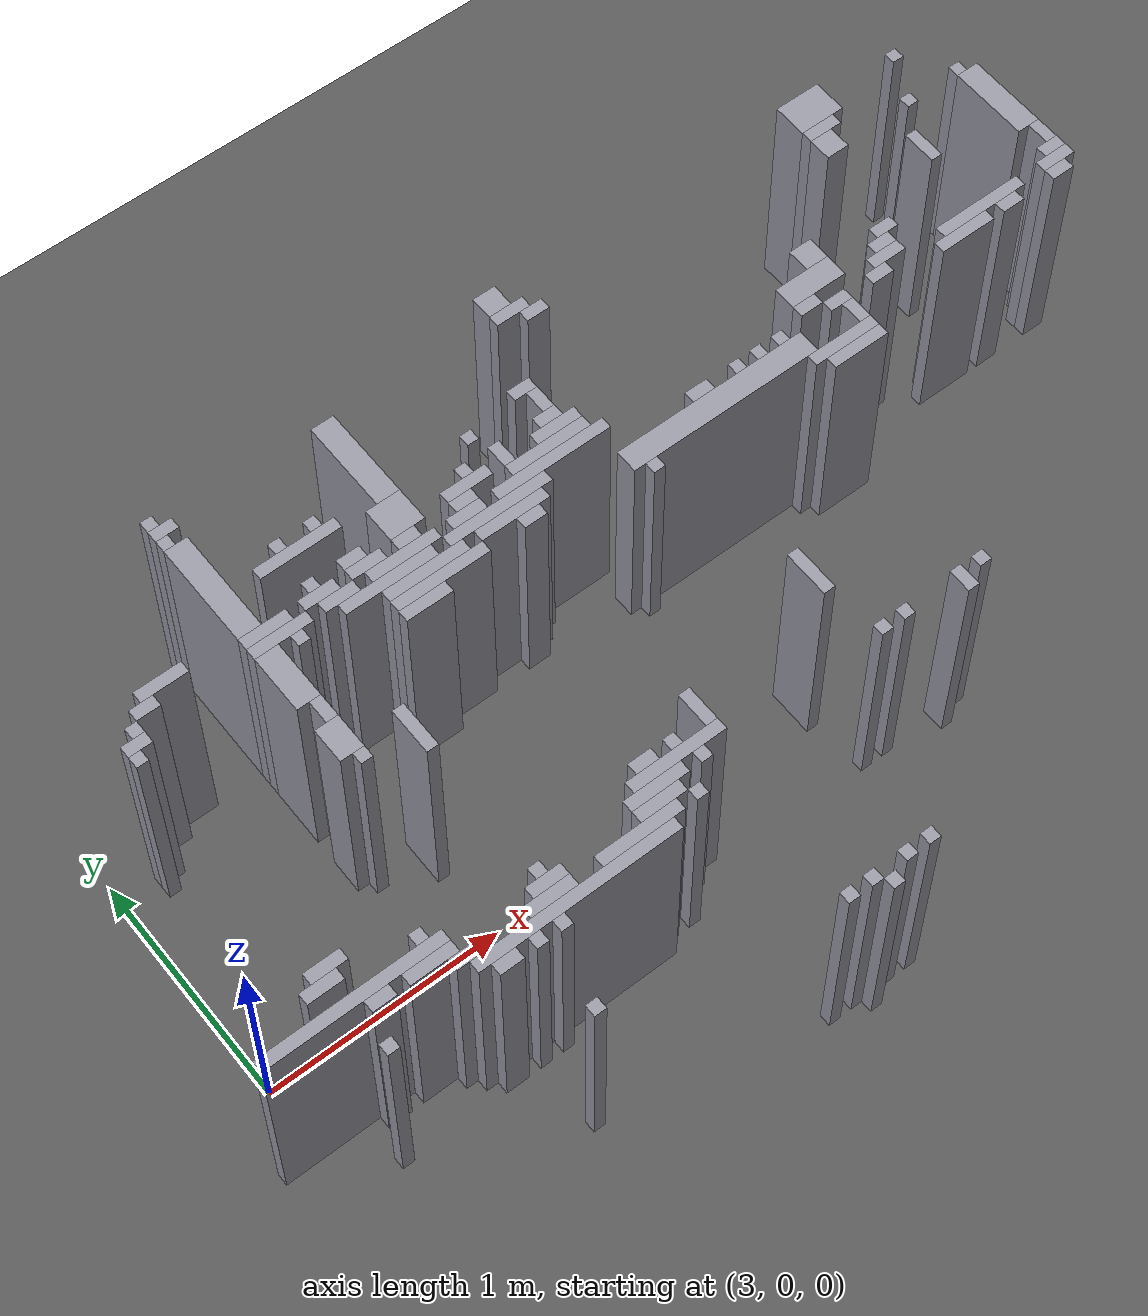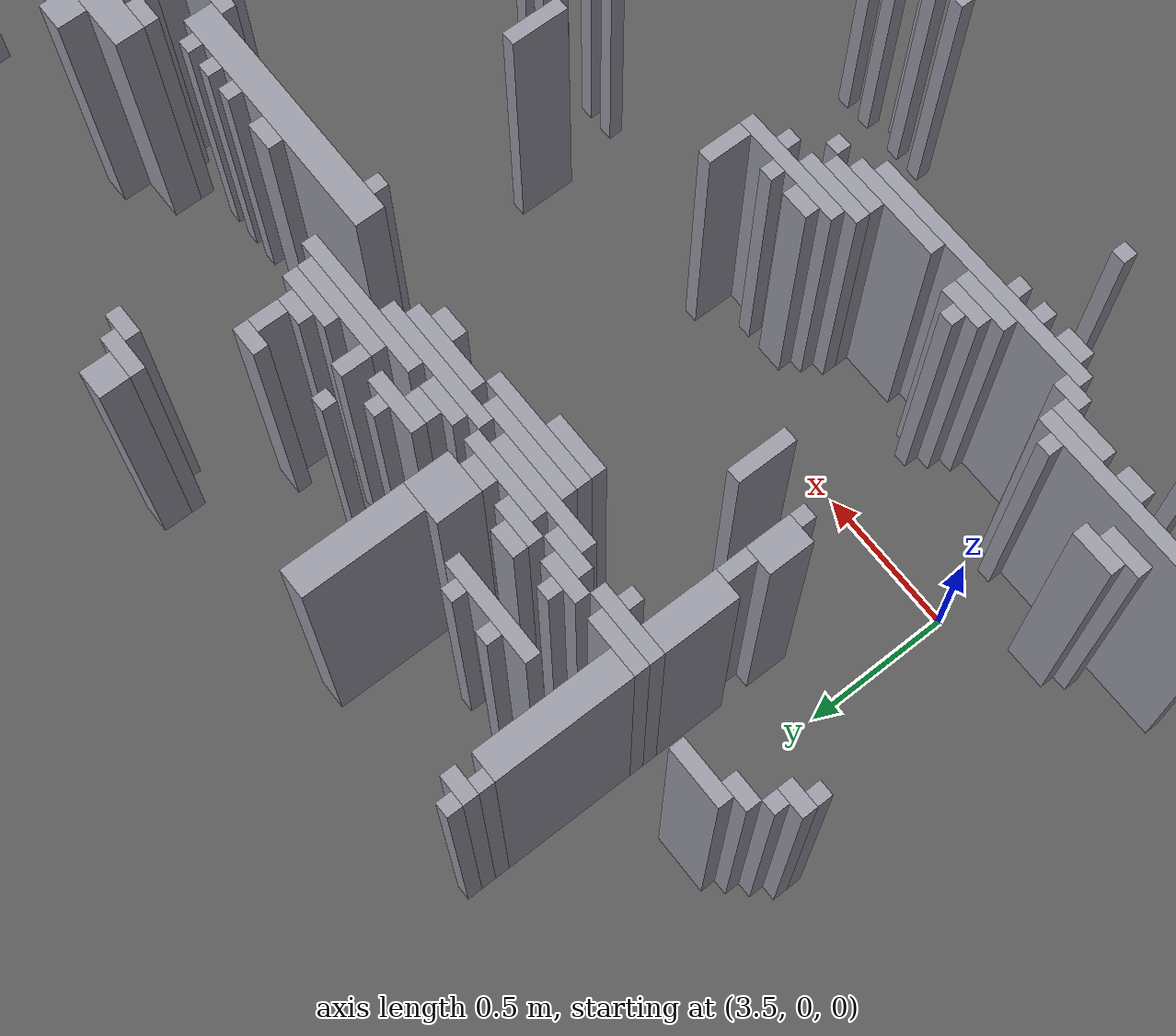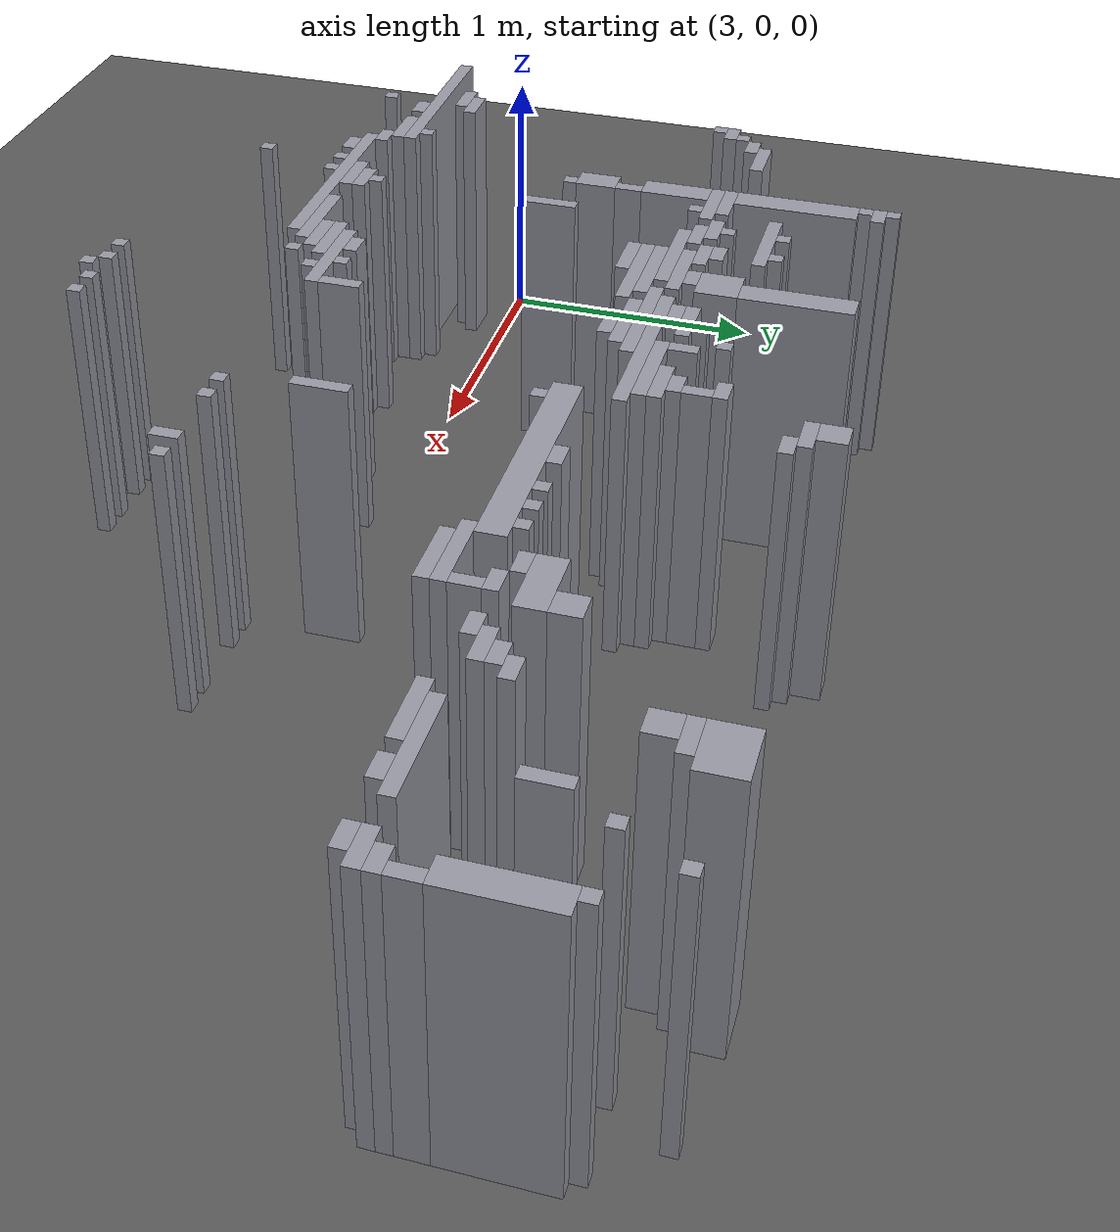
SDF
<sdf version="1.8">
 <world name="dimi">
  <model name="ground">
   <static>true</static>
   <link name="ground_link">
    <collision name="c"><geometry><plane><normal>0 0 1</normal><size>60 60</size></plane></geometry></collision>
    <visual name="v">
     <geometry><plane><normal>0 0 1</normal><size>60 60</size></plane></geometry>
     <material><ambient>0.3 0.3 0.3 1</ambient><diffuse>0.35 0.35 0.35 1</diffuse></material>
    </visual>
   </link>
  </model>
  <model name="walls">
   <static>true</static>
   <link name="wall_625">
    <pose>5.2530 1.6420 0.5000 0 0 0</pose>
    <collision name="c"><geometry><box><size>0.1000 0.1000 1.0000</size></box></geometry></collision>
    <visual name="v">
     <geometry><box><size>0.1000 0.1000 1.0000</size></box></geometry>
     <material><ambient>0.5 0.5 0.55 1</ambient><diffuse>0.6 0.6 0.65 1</diffuse></material>
    </visual>
   </link>
   <link name="wall_626">
    <pose>6.7530 1.6170 0.5000 0 0 0</pose>
    <collision name="c"><geometry><box><size>0.2000 0.1500 1.0000</size></box></geometry></collision>
    <visual name="v">
     <geometry><box><size>0.2000 0.1500 1.0000</size></box></geometry>
     <material><ambient>0.5 0.5 0.55 1</ambient><diffuse>0.6 0.6 0.65 1</diffuse></material>
    </visual>
   </link>
   <link name="wall_628">
    <pose>3.7280 1.6170 0.5000 0 0 0</pose>
    <collision name="c"><geometry><box><size>0.0500 0.0500 1.0000</size></box></geometry></collision>
    <visual name="v">
     <geometry><box><size>0.0500 0.0500 1.0000</size></box></geometry>
     <material><ambient>0.5 0.5 0.55 1</ambient><diffuse>0.6 0.6 0.65 1</diffuse></material>
    </visual>
   </link>
   <link name="wall_629">
    <pose>7.1780 1.6170 0.5000 0 0 0</pose>
    <collision name="c"><geometry><box><size>0.0500 0.0500 1.0000</size></box></geometry></collision>
    <visual name="v">
     <geometry><box><size>0.0500 0.0500 1.0000</size></box></geometry>
     <material><ambient>0.5 0.5 0.55 1</ambient><diffuse>0.6 0.6 0.65 1</diffuse></material>
    </visual>
   </link>
   <link name="wall_630">
    <pose>3.7530 1.5670 0.5000 0 0 0</pose>
    <collision name="c"><geometry><box><size>0.1000 0.0500 1.0000</size></box></geometry></collision>
    <visual name="v">
     <geometry><box><size>0.1000 0.0500 1.0000</size></box></geometry>
     <material><ambient>0.5 0.5 0.55 1</ambient><diffuse>0.6 0.6 0.65 1</diffuse></material>
    </visual>
   </link>
   <link name="wall_631">
    <pose>4.4530 1.3920 0.5000 0 0 0</pose>
    <collision name="c"><geometry><box><size>0.1000 0.4000 1.0000</size></box></geometry></collision>
    <visual name="v">
     <geometry><box><size>0.1000 0.4000 1.0000</size></box></geometry>
     <material><ambient>0.5 0.5 0.55 1</ambient><diffuse>0.6 0.6 0.65 1</diffuse></material>
    </visual>
   </link>
   <link name="wall_632">
    <pose>5.2780 1.5670 0.5000 0 0 0</pose>
    <collision name="c"><geometry><box><size>0.1500 0.0500 1.0000</size></box></geometry></collision>
    <visual name="v">
     <geometry><box><size>0.1500 0.0500 1.0000</size></box></geometry>
     <material><ambient>0.5 0.5 0.55 1</ambient><diffuse>0.6 0.6 0.65 1</diffuse></material>
    </visual>
   </link>
   <link name="wall_633">
    <pose>3.7280 1.5170 0.5000 0 0 0</pose>
    <collision name="c"><geometry><box><size>0.0500 0.0500 1.0000</size></box></geometry></collision>
    <visual name="v">
     <geometry><box><size>0.0500 0.0500 1.0000</size></box></geometry>
     <material><ambient>0.5 0.5 0.55 1</ambient><diffuse>0.6 0.6 0.65 1</diffuse></material>
    </visual>
   </link>
   <link name="wall_634">
    <pose>5.3530 1.5170 0.5000 0 0 0</pose>
    <collision name="c"><geometry><box><size>0.1000 0.0500 1.0000</size></box></geometry></collision>
    <visual name="v">
     <geometry><box><size>0.1000 0.0500 1.0000</size></box></geometry>
     <material><ambient>0.5 0.5 0.55 1</ambient><diffuse>0.6 0.6 0.65 1</diffuse></material>
    </visual>
   </link>
   <link name="wall_635">
    <pose>6.7280 1.5170 0.5000 0 0 0</pose>
    <collision name="c"><geometry><box><size>0.1500 0.0500 1.0000</size></box></geometry></collision>
    <visual name="v">
     <geometry><box><size>0.1500 0.0500 1.0000</size></box></geometry>
     <material><ambient>0.5 0.5 0.55 1</ambient><diffuse>0.6 0.6 0.65 1</diffuse></material>
    </visual>
   </link>
   <link name="wall_636">
    <pose>3.7530 1.2670 0.5000 0 0 0</pose>
    <collision name="c"><geometry><box><size>0.1000 0.4500 1.0000</size></box></geometry></collision>
    <visual name="v">
     <geometry><box><size>0.1000 0.4500 1.0000</size></box></geometry>
     <material><ambient>0.5 0.5 0.55 1</ambient><diffuse>0.6 0.6 0.65 1</diffuse></material>
    </visual>
   </link>
   <link name="wall_637">
    <pose>6.7030 1.4420 0.5000 0 0 0</pose>
    <collision name="c"><geometry><box><size>0.1000 0.1000 1.0000</size></box></geometry></collision>
    <visual name="v">
     <geometry><box><size>0.1000 0.1000 1.0000</size></box></geometry>
     <material><ambient>0.5 0.5 0.55 1</ambient><diffuse>0.6 0.6 0.65 1</diffuse></material>
    </visual>
   </link>
   <link name="wall_639">
    <pose>7.0780 1.4170 0.5000 0 0 0</pose>
    <collision name="c"><geometry><box><size>0.0500 0.0500 1.0000</size></box></geometry></collision>
    <visual name="v">
     <geometry><box><size>0.0500 0.0500 1.0000</size></box></geometry>
     <material><ambient>0.5 0.5 0.55 1</ambient><diffuse>0.6 0.6 0.65 1</diffuse></material>
    </visual>
   </link>
   <link name="wall_640">
    <pose>7.3280 1.4170 0.5000 0 0 0</pose>
    <collision name="c"><geometry><box><size>0.0500 0.0500 1.0000</size></box></geometry></collision>
    <visual name="v">
     <geometry><box><size>0.0500 0.0500 1.0000</size></box></geometry>
     <material><ambient>0.5 0.5 0.55 1</ambient><diffuse>0.6 0.6 0.65 1</diffuse></material>
    </visual>
   </link>
   <link name="wall_642">
    <pose>7.3530 1.2170 0.5000 0 0 0</pose>
    <collision name="c"><geometry><box><size>0.1000 0.3500 1.0000</size></box></geometry></collision>
    <visual name="v">
     <geometry><box><size>0.1000 0.3500 1.0000</size></box></geometry>
     <material><ambient>0.5 0.5 0.55 1</ambient><diffuse>0.6 0.6 0.65 1</diffuse></material>
    </visual>
   </link>
   <link name="wall_648">
    <pose>4.0280 1.2670 0.5000 0 0 0</pose>
    <collision name="c"><geometry><box><size>0.0500 0.0500 1.0000</size></box></geometry></collision>
    <visual name="v">
     <geometry><box><size>0.0500 0.0500 1.0000</size></box></geometry>
     <material><ambient>0.5 0.5 0.55 1</ambient><diffuse>0.6 0.6 0.65 1</diffuse></material>
    </visual>
   </link>
   <link name="wall_649">
    <pose>4.1780 1.2670 0.5000 0 0 0</pose>
    <collision name="c"><geometry><box><size>0.0500 0.0500 1.0000</size></box></geometry></collision>
    <visual name="v">
     <geometry><box><size>0.0500 0.0500 1.0000</size></box></geometry>
     <material><ambient>0.5 0.5 0.55 1</ambient><diffuse>0.6 0.6 0.65 1</diffuse></material>
    </visual>
   </link>
   <link name="wall_650">
    <pose>5.1030 1.2670 0.5000 0 0 0</pose>
    <collision name="c"><geometry><box><size>0.1000 0.0500 1.0000</size></box></geometry></collision>
    <visual name="v">
     <geometry><box><size>0.1000 0.0500 1.0000</size></box></geometry>
     <material><ambient>0.5 0.5 0.55 1</ambient><diffuse>0.6 0.6 0.65 1</diffuse></material>
    </visual>
   </link>
   <link name="wall_651">
    <pose>6.9780 1.2170 0.5000 0 0 0</pose>
    <collision name="c"><geometry><box><size>0.0500 0.1500 1.0000</size></box></geometry></collision>
    <visual name="v">
     <geometry><box><size>0.0500 0.1500 1.0000</size></box></geometry>
     <material><ambient>0.5 0.5 0.55 1</ambient><diffuse>0.6 0.6 0.65 1</diffuse></material>
    </visual>
   </link>
   <link name="wall_655">
    <pose>4.0780 1.2170 0.5000 0 0 0</pose>
    <collision name="c"><geometry><box><size>0.3500 0.0500 1.0000</size></box></geometry></collision>
    <visual name="v">
     <geometry><box><size>0.3500 0.0500 1.0000</size></box></geometry>
     <material><ambient>0.5 0.5 0.55 1</ambient><diffuse>0.6 0.6 0.65 1</diffuse></material>
    </visual>
   </link>
   <link name="wall_656">
    <pose>4.8280 1.2170 0.5000 0 0 0</pose>
    <collision name="c"><geometry><box><size>0.0500 0.0500 1.0000</size></box></geometry></collision>
    <visual name="v">
     <geometry><box><size>0.0500 0.0500 1.0000</size></box></geometry>
     <material><ambient>0.5 0.5 0.55 1</ambient><diffuse>0.6 0.6 0.65 1</diffuse></material>
    </visual>
   </link>
   <link name="wall_657">
    <pose>5.1280 1.1920 0.5000 0 0 0</pose>
    <collision name="c"><geometry><box><size>0.0500 0.1000 1.0000</size></box></geometry></collision>
    <visual name="v">
     <geometry><box><size>0.0500 0.1000 1.0000</size></box></geometry>
     <material><ambient>0.5 0.5 0.55 1</ambient><diffuse>0.6 0.6 0.65 1</diffuse></material>
    </visual>
   </link>
   <link name="wall_659">
    <pose>4.4280 1.1170 0.5000 0 0 0</pose>
    <collision name="c"><geometry><box><size>0.1500 0.1500 1.0000</size></box></geometry></collision>
    <visual name="v">
     <geometry><box><size>0.1500 0.1500 1.0000</size></box></geometry>
     <material><ambient>0.5 0.5 0.55 1</ambient><diffuse>0.6 0.6 0.65 1</diffuse></material>
    </visual>
   </link>
   <link name="wall_660">
    <pose>4.7280 1.1170 0.5000 0 0 0</pose>
    <collision name="c"><geometry><box><size>0.0500 0.0500 1.0000</size></box></geometry></collision>
    <visual name="v">
     <geometry><box><size>0.0500 0.0500 1.0000</size></box></geometry>
     <material><ambient>0.5 0.5 0.55 1</ambient><diffuse>0.6 0.6 0.65 1</diffuse></material>
    </visual>
   </link>
   <link name="wall_661">
    <pose>4.8780 1.0920 0.5000 0 0 0</pose>
    <collision name="c"><geometry><box><size>0.0500 0.1000 1.0000</size></box></geometry></collision>
    <visual name="v">
     <geometry><box><size>0.0500 0.1000 1.0000</size></box></geometry>
     <material><ambient>0.5 0.5 0.55 1</ambient><diffuse>0.6 0.6 0.65 1</diffuse></material>
    </visual>
   </link>
   <link name="wall_662">
    <pose>5.1030 1.1170 0.5000 0 0 0</pose>
    <collision name="c"><geometry><box><size>0.1000 0.0500 1.0000</size></box></geometry></collision>
    <visual name="v">
     <geometry><box><size>0.1000 0.0500 1.0000</size></box></geometry>
     <material><ambient>0.5 0.5 0.55 1</ambient><diffuse>0.6 0.6 0.65 1</diffuse></material>
    </visual>
   </link>
   <link name="wall_663">
    <pose>6.3030 1.0920 0.5000 0 0 0</pose>
    <collision name="c"><geometry><box><size>0.1000 0.1000 1.0000</size></box></geometry></collision>
    <visual name="v">
     <geometry><box><size>0.1000 0.1000 1.0000</size></box></geometry>
     <material><ambient>0.5 0.5 0.55 1</ambient><diffuse>0.6 0.6 0.65 1</diffuse></material>
    </visual>
   </link>
   <link name="wall_664">
    <pose>3.4030 1.0670 0.5000 0 0 0</pose>
    <collision name="c"><geometry><box><size>0.2000 0.0500 1.0000</size></box></geometry></collision>
    <visual name="v">
     <geometry><box><size>0.2000 0.0500 1.0000</size></box></geometry>
     <material><ambient>0.5 0.5 0.55 1</ambient><diffuse>0.6 0.6 0.65 1</diffuse></material>
    </visual>
   </link>
   <link name="wall_665">
    <pose>4.0280 1.0670 0.5000 0 0 0</pose>
    <collision name="c"><geometry><box><size>0.0500 0.0500 1.0000</size></box></geometry></collision>
    <visual name="v">
     <geometry><box><size>0.0500 0.0500 1.0000</size></box></geometry>
     <material><ambient>0.5 0.5 0.55 1</ambient><diffuse>0.6 0.6 0.65 1</diffuse></material>
    </visual>
   </link>
   <link name="wall_666">
    <pose>4.2030 1.0670 0.5000 0 0 0</pose>
    <collision name="c"><geometry><box><size>0.1000 0.0500 1.0000</size></box></geometry></collision>
    <visual name="v">
     <geometry><box><size>0.1000 0.0500 1.0000</size></box></geometry>
     <material><ambient>0.5 0.5 0.55 1</ambient><diffuse>0.6 0.6 0.65 1</diffuse></material>
    </visual>
   </link>
   <link name="wall_667">
    <pose>4.7030 1.0670 0.5000 0 0 0</pose>
    <collision name="c"><geometry><box><size>0.2000 0.0500 1.0000</size></box></geometry></collision>
    <visual name="v">
     <geometry><box><size>0.2000 0.0500 1.0000</size></box></geometry>
     <material><ambient>0.5 0.5 0.55 1</ambient><diffuse>0.6 0.6 0.65 1</diffuse></material>
    </visual>
   </link>
   <link name="wall_668">
    <pose>5.1030 1.0670 0.5000 0 0 0</pose>
    <collision name="c"><geometry><box><size>0.2000 0.0500 1.0000</size></box></geometry></collision>
    <visual name="v">
     <geometry><box><size>0.2000 0.0500 1.0000</size></box></geometry>
     <material><ambient>0.5 0.5 0.55 1</ambient><diffuse>0.6 0.6 0.65 1</diffuse></material>
    </visual>
   </link>
   <link name="wall_669">
    <pose>3.3030 1.0170 0.5000 0 0 0</pose>
    <collision name="c"><geometry><box><size>0.1000 0.0500 1.0000</size></box></geometry></collision>
    <visual name="v">
     <geometry><box><size>0.1000 0.0500 1.0000</size></box></geometry>
     <material><ambient>0.5 0.5 0.55 1</ambient><diffuse>0.6 0.6 0.65 1</diffuse></material>
    </visual>
   </link>
   <link name="wall_670">
    <pose>3.8030 1.0170 0.5000 0 0 0</pose>
    <collision name="c"><geometry><box><size>0.2000 0.0500 1.0000</size></box></geometry></collision>
    <visual name="v">
     <geometry><box><size>0.2000 0.0500 1.0000</size></box></geometry>
     <material><ambient>0.5 0.5 0.55 1</ambient><diffuse>0.6 0.6 0.65 1</diffuse></material>
    </visual>
   </link>
   <link name="wall_671">
    <pose>4.0280 1.0170 0.5000 0 0 0</pose>
    <collision name="c"><geometry><box><size>0.1500 0.0500 1.0000</size></box></geometry></collision>
    <visual name="v">
     <geometry><box><size>0.1500 0.0500 1.0000</size></box></geometry>
     <material><ambient>0.5 0.5 0.55 1</ambient><diffuse>0.6 0.6 0.65 1</diffuse></material>
    </visual>
   </link>
   <link name="wall_672">
    <pose>4.2280 1.0170 0.5000 0 0 0</pose>
    <collision name="c"><geometry><box><size>0.1500 0.0500 1.0000</size></box></geometry></collision>
    <visual name="v">
     <geometry><box><size>0.1500 0.0500 1.0000</size></box></geometry>
     <material><ambient>0.5 0.5 0.55 1</ambient><diffuse>0.6 0.6 0.65 1</diffuse></material>
    </visual>
   </link>
   <link name="wall_673">
    <pose>4.4030 1.0170 0.5000 0 0 0</pose>
    <collision name="c"><geometry><box><size>0.1000 0.0500 1.0000</size></box></geometry></collision>
    <visual name="v">
     <geometry><box><size>0.1000 0.0500 1.0000</size></box></geometry>
     <material><ambient>0.5 0.5 0.55 1</ambient><diffuse>0.6 0.6 0.65 1</diffuse></material>
    </visual>
   </link>
   <link name="wall_674">
    <pose>4.6530 1.0170 0.5000 0 0 0</pose>
    <collision name="c"><geometry><box><size>0.1000 0.0500 1.0000</size></box></geometry></collision>
    <visual name="v">
     <geometry><box><size>0.1000 0.0500 1.0000</size></box></geometry>
     <material><ambient>0.5 0.5 0.55 1</ambient><diffuse>0.6 0.6 0.65 1</diffuse></material>
    </visual>
   </link>
   <link name="wall_675">
    <pose>5.0280 1.0170 0.5000 0 0 0</pose>
    <collision name="c"><geometry><box><size>0.3500 0.0500 1.0000</size></box></geometry></collision>
    <visual name="v">
     <geometry><box><size>0.3500 0.0500 1.0000</size></box></geometry>
     <material><ambient>0.5 0.5 0.55 1</ambient><diffuse>0.6 0.6 0.65 1</diffuse></material>
    </visual>
   </link>
   <link name="wall_676">
    <pose>6.2280 0.9920 0.5000 0 0 0</pose>
    <collision name="c"><geometry><box><size>0.2500 0.1000 1.0000</size></box></geometry></collision>
    <visual name="v">
     <geometry><box><size>0.2500 0.1000 1.0000</size></box></geometry>
     <material><ambient>0.5 0.5 0.55 1</ambient><diffuse>0.6 0.6 0.65 1</diffuse></material>
    </visual>
   </link>
   <link name="wall_677">
    <pose>6.6030 1.0170 0.5000 0 0 0</pose>
    <collision name="c"><geometry><box><size>0.1000 0.0500 1.0000</size></box></geometry></collision>
    <visual name="v">
     <geometry><box><size>0.1000 0.0500 1.0000</size></box></geometry>
     <material><ambient>0.5 0.5 0.55 1</ambient><diffuse>0.6 0.6 0.65 1</diffuse></material>
    </visual>
   </link>
   <link name="wall_678">
    <pose>7.3780 0.9920 0.5000 0 0 0</pose>
    <collision name="c"><geometry><box><size>0.0500 0.1000 1.0000</size></box></geometry></collision>
    <visual name="v">
     <geometry><box><size>0.0500 0.1000 1.0000</size></box></geometry>
     <material><ambient>0.5 0.5 0.55 1</ambient><diffuse>0.6 0.6 0.65 1</diffuse></material>
    </visual>
   </link>
   <link name="wall_679">
    <pose>3.2280 0.9670 0.5000 0 0 0</pose>
    <collision name="c"><geometry><box><size>0.0500 0.0500 1.0000</size></box></geometry></collision>
    <visual name="v">
     <geometry><box><size>0.0500 0.0500 1.0000</size></box></geometry>
     <material><ambient>0.5 0.5 0.55 1</ambient><diffuse>0.6 0.6 0.65 1</diffuse></material>
    </visual>
   </link>
   <link name="wall_680">
    <pose>3.8280 0.9670 0.5000 0 0 0</pose>
    <collision name="c"><geometry><box><size>0.2500 0.0500 1.0000</size></box></geometry></collision>
    <visual name="v">
     <geometry><box><size>0.2500 0.0500 1.0000</size></box></geometry>
     <material><ambient>0.5 0.5 0.55 1</ambient><diffuse>0.6 0.6 0.65 1</diffuse></material>
    </visual>
   </link>
   <link name="wall_681">
    <pose>4.0780 0.9670 0.5000 0 0 0</pose>
    <collision name="c"><geometry><box><size>0.1500 0.0500 1.0000</size></box></geometry></collision>
    <visual name="v">
     <geometry><box><size>0.1500 0.0500 1.0000</size></box></geometry>
     <material><ambient>0.5 0.5 0.55 1</ambient><diffuse>0.6 0.6 0.65 1</diffuse></material>
    </visual>
   </link>
   <link name="wall_682">
    <pose>4.3530 0.9670 0.5000 0 0 0</pose>
    <collision name="c"><geometry><box><size>0.3000 0.0500 1.0000</size></box></geometry></collision>
    <visual name="v">
     <geometry><box><size>0.3000 0.0500 1.0000</size></box></geometry>
     <material><ambient>0.5 0.5 0.55 1</ambient><diffuse>0.6 0.6 0.65 1</diffuse></material>
    </visual>
   </link>
   <link name="wall_683">
    <pose>4.6280 0.9670 0.5000 0 0 0</pose>
    <collision name="c"><geometry><box><size>0.1500 0.0500 1.0000</size></box></geometry></collision>
    <visual name="v">
     <geometry><box><size>0.1500 0.0500 1.0000</size></box></geometry>
     <material><ambient>0.5 0.5 0.55 1</ambient><diffuse>0.6 0.6 0.65 1</diffuse></material>
    </visual>
   </link>
   <link name="wall_684">
    <pose>5.0030 0.9670 0.5000 0 0 0</pose>
    <collision name="c"><geometry><box><size>0.5000 0.0500 1.0000</size></box></geometry></collision>
    <visual name="v">
     <geometry><box><size>0.5000 0.0500 1.0000</size></box></geometry>
     <material><ambient>0.5 0.5 0.55 1</ambient><diffuse>0.6 0.6 0.65 1</diffuse></material>
    </visual>
   </link>
   <link name="wall_685">
    <pose>6.5530 0.9670 0.5000 0 0 0</pose>
    <collision name="c"><geometry><box><size>0.1000 0.0500 1.0000</size></box></geometry></collision>
    <visual name="v">
     <geometry><box><size>0.1000 0.0500 1.0000</size></box></geometry>
     <material><ambient>0.5 0.5 0.55 1</ambient><diffuse>0.6 0.6 0.65 1</diffuse></material>
    </visual>
   </link>
   <link name="wall_686">
    <pose>3.2030 0.9170 0.5000 0 0 0</pose>
    <collision name="c"><geometry><box><size>0.1000 0.0500 1.0000</size></box></geometry></collision>
    <visual name="v">
     <geometry><box><size>0.1000 0.0500 1.0000</size></box></geometry>
     <material><ambient>0.5 0.5 0.55 1</ambient><diffuse>0.6 0.6 0.65 1</diffuse></material>
    </visual>
   </link>
   <link name="wall_687">
    <pose>3.7530 0.8170 0.5000 0 0 0</pose>
    <collision name="c"><geometry><box><size>0.1000 0.2500 1.0000</size></box></geometry></collision>
    <visual name="v">
     <geometry><box><size>0.1000 0.2500 1.0000</size></box></geometry>
     <material><ambient>0.5 0.5 0.55 1</ambient><diffuse>0.6 0.6 0.65 1</diffuse></material>
    </visual>
   </link>
   <link name="wall_688">
    <pose>3.8780 0.9170 0.5000 0 0 0</pose>
    <collision name="c"><geometry><box><size>0.0500 0.0500 1.0000</size></box></geometry></collision>
    <visual name="v">
     <geometry><box><size>0.0500 0.0500 1.0000</size></box></geometry>
     <material><ambient>0.5 0.5 0.55 1</ambient><diffuse>0.6 0.6 0.65 1</diffuse></material>
    </visual>
   </link>
   <link name="wall_689">
    <pose>4.2530 0.9170 0.5000 0 0 0</pose>
    <collision name="c"><geometry><box><size>0.4000 0.0500 1.0000</size></box></geometry></collision>
    <visual name="v">
     <geometry><box><size>0.4000 0.0500 1.0000</size></box></geometry>
     <material><ambient>0.5 0.5 0.55 1</ambient><diffuse>0.6 0.6 0.65 1</diffuse></material>
    </visual>
   </link>
   <link name="wall_690">
    <pose>4.7280 0.9170 0.5000 0 0 0</pose>
    <collision name="c"><geometry><box><size>0.4500 0.0500 1.0000</size></box></geometry></collision>
    <visual name="v">
     <geometry><box><size>0.4500 0.0500 1.0000</size></box></geometry>
     <material><ambient>0.5 0.5 0.55 1</ambient><diffuse>0.6 0.6 0.65 1</diffuse></material>
    </visual>
   </link>
   <link name="wall_691">
    <pose>6.1530 0.9170 0.5000 0 0 0</pose>
    <collision name="c"><geometry><box><size>0.1000 0.0500 1.0000</size></box></geometry></collision>
    <visual name="v">
     <geometry><box><size>0.1000 0.0500 1.0000</size></box></geometry>
     <material><ambient>0.5 0.5 0.55 1</ambient><diffuse>0.6 0.6 0.65 1</diffuse></material>
    </visual>
   </link>
   <link name="wall_692">
    <pose>6.5280 0.9170 0.5000 0 0 0</pose>
    <collision name="c"><geometry><box><size>0.1500 0.0500 1.0000</size></box></geometry></collision>
    <visual name="v">
     <geometry><box><size>0.1500 0.0500 1.0000</size></box></geometry>
     <material><ambient>0.5 0.5 0.55 1</ambient><diffuse>0.6 0.6 0.65 1</diffuse></material>
    </visual>
   </link>
   <link name="wall_693">
    <pose>7.3530 0.9170 0.5000 0 0 0</pose>
    <collision name="c"><geometry><box><size>0.1000 0.0500 1.0000</size></box></geometry></collision>
    <visual name="v">
     <geometry><box><size>0.1000 0.0500 1.0000</size></box></geometry>
     <material><ambient>0.5 0.5 0.55 1</ambient><diffuse>0.6 0.6 0.65 1</diffuse></material>
    </visual>
   </link>
   <link name="wall_694">
    <pose>3.1780 0.8670 0.5000 0 0 0</pose>
    <collision name="c"><geometry><box><size>0.0500 0.0500 1.0000</size></box></geometry></collision>
    <visual name="v">
     <geometry><box><size>0.0500 0.0500 1.0000</size></box></geometry>
     <material><ambient>0.5 0.5 0.55 1</ambient><diffuse>0.6 0.6 0.65 1</diffuse></material>
    </visual>
   </link>
   <link name="wall_695">
    <pose>4.3780 0.8670 0.5000 0 0 0</pose>
    <collision name="c"><geometry><box><size>0.3500 0.0500 1.0000</size></box></geometry></collision>
    <visual name="v">
     <geometry><box><size>0.3500 0.0500 1.0000</size></box></geometry>
     <material><ambient>0.5 0.5 0.55 1</ambient><diffuse>0.6 0.6 0.65 1</diffuse></material>
    </visual>
   </link>
   <link name="wall_696">
    <pose>4.7530 0.8670 0.5000 0 0 0</pose>
    <collision name="c"><geometry><box><size>0.3000 0.0500 1.0000</size></box></geometry></collision>
    <visual name="v">
     <geometry><box><size>0.3000 0.0500 1.0000</size></box></geometry>
     <material><ambient>0.5 0.5 0.55 1</ambient><diffuse>0.6 0.6 0.65 1</diffuse></material>
    </visual>
   </link>
   <link name="wall_697">
    <pose>5.6030 0.8670 0.5000 0 0 0</pose>
    <collision name="c"><geometry><box><size>0.1000 0.0500 1.0000</size></box></geometry></collision>
    <visual name="v">
     <geometry><box><size>0.1000 0.0500 1.0000</size></box></geometry>
     <material><ambient>0.5 0.5 0.55 1</ambient><diffuse>0.6 0.6 0.65 1</diffuse></material>
    </visual>
   </link>
   <link name="wall_698">
    <pose>5.7780 0.8670 0.5000 0 0 0</pose>
    <collision name="c"><geometry><box><size>0.0500 0.0500 1.0000</size></box></geometry></collision>
    <visual name="v">
     <geometry><box><size>0.0500 0.0500 1.0000</size></box></geometry>
     <material><ambient>0.5 0.5 0.55 1</ambient><diffuse>0.6 0.6 0.65 1</diffuse></material>
    </visual>
   </link>
   <link name="wall_699">
    <pose>5.8780 0.8670 0.5000 0 0 0</pose>
    <collision name="c"><geometry><box><size>0.0500 0.0500 1.0000</size></box></geometry></collision>
    <visual name="v">
     <geometry><box><size>0.0500 0.0500 1.0000</size></box></geometry>
     <material><ambient>0.5 0.5 0.55 1</ambient><diffuse>0.6 0.6 0.65 1</diffuse></material>
    </visual>
   </link>
   <link name="wall_700">
    <pose>5.9780 0.8670 0.5000 0 0 0</pose>
    <collision name="c"><geometry><box><size>0.0500 0.0500 1.0000</size></box></geometry></collision>
    <visual name="v">
     <geometry><box><size>0.0500 0.0500 1.0000</size></box></geometry>
     <material><ambient>0.5 0.5 0.55 1</ambient><diffuse>0.6 0.6 0.65 1</diffuse></material>
    </visual>
   </link>
   <link name="wall_701">
    <pose>6.2530 0.8670 0.5000 0 0 0</pose>
    <collision name="c"><geometry><box><size>0.1000 0.0500 1.0000</size></box></geometry></collision>
    <visual name="v">
     <geometry><box><size>0.1000 0.0500 1.0000</size></box></geometry>
     <material><ambient>0.5 0.5 0.55 1</ambient><diffuse>0.6 0.6 0.65 1</diffuse></material>
    </visual>
   </link>
   <link name="wall_702">
    <pose>6.4530 0.8670 0.5000 0 0 0</pose>
    <collision name="c"><geometry><box><size>0.1000 0.0500 1.0000</size></box></geometry></collision>
    <visual name="v">
     <geometry><box><size>0.1000 0.0500 1.0000</size></box></geometry>
     <material><ambient>0.5 0.5 0.55 1</ambient><diffuse>0.6 0.6 0.65 1</diffuse></material>
    </visual>
   </link>
   <link name="wall_703">
    <pose>6.9530 0.8670 0.5000 0 0 0</pose>
    <collision name="c"><geometry><box><size>0.4000 0.0500 1.0000</size></box></geometry></collision>
    <visual name="v">
     <geometry><box><size>0.4000 0.0500 1.0000</size></box></geometry>
     <material><ambient>0.5 0.5 0.55 1</ambient><diffuse>0.6 0.6 0.65 1</diffuse></material>
    </visual>
   </link>
   <link name="wall_704">
    <pose>7.3280 0.8670 0.5000 0 0 0</pose>
    <collision name="c"><geometry><box><size>0.1500 0.0500 1.0000</size></box></geometry></collision>
    <visual name="v">
     <geometry><box><size>0.1500 0.0500 1.0000</size></box></geometry>
     <material><ambient>0.5 0.5 0.55 1</ambient><diffuse>0.6 0.6 0.65 1</diffuse></material>
    </visual>
   </link>
   <link name="wall_705">
    <pose>4.4030 0.8170 0.5000 0 0 0</pose>
    <collision name="c"><geometry><box><size>0.4000 0.0500 1.0000</size></box></geometry></collision>
    <visual name="v">
     <geometry><box><size>0.4000 0.0500 1.0000</size></box></geometry>
     <material><ambient>0.5 0.5 0.55 1</ambient><diffuse>0.6 0.6 0.65 1</diffuse></material>
    </visual>
   </link>
   <link name="wall_706">
    <pose>4.8030 0.8170 0.5000 0 0 0</pose>
    <collision name="c"><geometry><box><size>0.1000 0.0500 1.0000</size></box></geometry></collision>
    <visual name="v">
     <geometry><box><size>0.1000 0.0500 1.0000</size></box></geometry>
     <material><ambient>0.5 0.5 0.55 1</ambient><diffuse>0.6 0.6 0.65 1</diffuse></material>
    </visual>
   </link>
   <link name="wall_707">
    <pose>5.6280 0.7920 0.5000 0 0 0</pose>
    <collision name="c"><geometry><box><size>0.8500 0.1000 1.0000</size></box></geometry></collision>
    <visual name="v">
     <geometry><box><size>0.8500 0.1000 1.0000</size></box></geometry>
     <material><ambient>0.5 0.5 0.55 1</ambient><diffuse>0.6 0.6 0.65 1</diffuse></material>
    </visual>
   </link>
   <link name="wall_708">
    <pose>6.2780 0.7920 0.5000 0 0 0</pose>
    <collision name="c"><geometry><box><size>0.0500 0.1000 1.0000</size></box></geometry></collision>
    <visual name="v">
     <geometry><box><size>0.0500 0.1000 1.0000</size></box></geometry>
     <material><ambient>0.5 0.5 0.55 1</ambient><diffuse>0.6 0.6 0.65 1</diffuse></material>
    </visual>
   </link>
   <link name="wall_709">
    <pose>6.8280 0.8170 0.5000 0 0 0</pose>
    <collision name="c"><geometry><box><size>0.2500 0.0500 1.0000</size></box></geometry></collision>
    <visual name="v">
     <geometry><box><size>0.2500 0.0500 1.0000</size></box></geometry>
     <material><ambient>0.5 0.5 0.55 1</ambient><diffuse>0.6 0.6 0.65 1</diffuse></material>
    </visual>
   </link>
   <link name="wall_710">
    <pose>7.0530 0.8170 0.5000 0 0 0</pose>
    <collision name="c"><geometry><box><size>0.1000 0.0500 1.0000</size></box></geometry></collision>
    <visual name="v">
     <geometry><box><size>0.1000 0.0500 1.0000</size></box></geometry>
     <material><ambient>0.5 0.5 0.55 1</ambient><diffuse>0.6 0.6 0.65 1</diffuse></material>
    </visual>
   </link>
   <link name="wall_711">
    <pose>7.3030 0.8170 0.5000 0 0 0</pose>
    <collision name="c"><geometry><box><size>0.1000 0.0500 1.0000</size></box></geometry></collision>
    <visual name="v">
     <geometry><box><size>0.1000 0.0500 1.0000</size></box></geometry>
     <material><ambient>0.5 0.5 0.55 1</ambient><diffuse>0.6 0.6 0.65 1</diffuse></material>
    </visual>
   </link>
   <link name="wall_712">
    <pose>4.3030 0.7670 0.5000 0 0 0</pose>
    <collision name="c"><geometry><box><size>0.2000 0.0500 1.0000</size></box></geometry></collision>
    <visual name="v">
     <geometry><box><size>0.2000 0.0500 1.0000</size></box></geometry>
     <material><ambient>0.5 0.5 0.55 1</ambient><diffuse>0.6 0.6 0.65 1</diffuse></material>
    </visual>
   </link>
   <link name="wall_713">
    <pose>5.2780 0.7170 0.5000 0 0 0</pose>
    <collision name="c"><geometry><box><size>0.0500 0.0500 1.0000</size></box></geometry></collision>
    <visual name="v">
     <geometry><box><size>0.0500 0.0500 1.0000</size></box></geometry>
     <material><ambient>0.5 0.5 0.55 1</ambient><diffuse>0.6 0.6 0.65 1</diffuse></material>
    </visual>
   </link>
   <link name="wall_714">
    <pose>6.1530 0.7170 0.5000 0 0 0</pose>
    <collision name="c"><geometry><box><size>0.3000 0.0500 1.0000</size></box></geometry></collision>
    <visual name="v">
     <geometry><box><size>0.3000 0.0500 1.0000</size></box></geometry>
     <material><ambient>0.5 0.5 0.55 1</ambient><diffuse>0.6 0.6 0.65 1</diffuse></material>
    </visual>
   </link>
   <link name="wall_715">
    <pose>3.7780 0.6420 0.5000 0 0 0</pose>
    <collision name="c"><geometry><box><size>0.0500 0.1000 1.0000</size></box></geometry></collision>
    <visual name="v">
     <geometry><box><size>0.0500 0.1000 1.0000</size></box></geometry>
     <material><ambient>0.5 0.5 0.55 1</ambient><diffuse>0.6 0.6 0.65 1</diffuse></material>
    </visual>
   </link>
   <link name="wall_716">
    <pose>6.1780 0.6670 0.5000 0 0 0</pose>
    <collision name="c"><geometry><box><size>0.2500 0.0500 1.0000</size></box></geometry></collision>
    <visual name="v">
     <geometry><box><size>0.2500 0.0500 1.0000</size></box></geometry>
     <material><ambient>0.5 0.5 0.55 1</ambient><diffuse>0.6 0.6 0.65 1</diffuse></material>
    </visual>
   </link>
   <link name="wall_717">
    <pose>3.7530 0.5170 0.5000 0 0 0</pose>
    <collision name="c"><geometry><box><size>0.1000 0.1500 1.0000</size></box></geometry></collision>
    <visual name="v">
     <geometry><box><size>0.1000 0.1500 1.0000</size></box></geometry>
     <material><ambient>0.5 0.5 0.55 1</ambient><diffuse>0.6 0.6 0.65 1</diffuse></material>
    </visual>
   </link>
   <link name="wall_718">
    <pose>3.9780 0.3920 0.5000 0 0 0</pose>
    <collision name="c"><geometry><box><size>0.0500 0.2000 1.0000</size></box></geometry></collision>
    <visual name="v">
     <geometry><box><size>0.0500 0.2000 1.0000</size></box></geometry>
     <material><ambient>0.5 0.5 0.55 1</ambient><diffuse>0.6 0.6 0.65 1</diffuse></material>
    </visual>
   </link>
   <link name="wall_719">
    <pose>3.7780 0.4170 0.5000 0 0 0</pose>
    <collision name="c"><geometry><box><size>0.0500 0.0500 1.0000</size></box></geometry></collision>
    <visual name="v">
     <geometry><box><size>0.0500 0.0500 1.0000</size></box></geometry>
     <material><ambient>0.5 0.5 0.55 1</ambient><diffuse>0.6 0.6 0.65 1</diffuse></material>
    </visual>
   </link>
   <link name="wall_730">
    <pose>5.4280 0.0420 0.5000 0 0 0</pose>
    <collision name="c"><geometry><box><size>0.0500 0.2000 1.0000</size></box></geometry></collision>
    <visual name="v">
     <geometry><box><size>0.0500 0.2000 1.0000</size></box></geometry>
     <material><ambient>0.5 0.5 0.55 1</ambient><diffuse>0.6 0.6 0.65 1</diffuse></material>
    </visual>
   </link>
   <link name="wall_737">
    <pose>4.7780 -0.1330 0.5000 0 0 0</pose>
    <collision name="c"><geometry><box><size>0.0500 0.1500 1.0000</size></box></geometry></collision>
    <visual name="v">
     <geometry><box><size>0.0500 0.1500 1.0000</size></box></geometry>
     <material><ambient>0.5 0.5 0.55 1</ambient><diffuse>0.6 0.6 0.65 1</diffuse></material>
    </visual>
   </link>
   <link name="wall_741">
    <pose>3.2280 -0.1330 0.5000 0 0 0</pose>
    <collision name="c"><geometry><box><size>0.1500 0.0500 1.0000</size></box></geometry></collision>
    <visual name="v">
     <geometry><box><size>0.1500 0.0500 1.0000</size></box></geometry>
     <material><ambient>0.5 0.5 0.55 1</ambient><diffuse>0.6 0.6 0.65 1</diffuse></material>
    </visual>
   </link>
   <link name="wall_746">
    <pose>3.1780 -0.1830 0.5000 0 0 0</pose>
    <collision name="c"><geometry><box><size>0.1500 0.0500 1.0000</size></box></geometry></collision>
    <visual name="v">
     <geometry><box><size>0.1500 0.0500 1.0000</size></box></geometry>
     <material><ambient>0.5 0.5 0.55 1</ambient><diffuse>0.6 0.6 0.65 1</diffuse></material>
    </visual>
   </link>
   <link name="wall_747">
    <pose>4.5030 -0.1830 0.5000 0 0 0</pose>
    <collision name="c"><geometry><box><size>0.1000 0.0500 1.0000</size></box></geometry></collision>
    <visual name="v">
     <geometry><box><size>0.1000 0.0500 1.0000</size></box></geometry>
     <material><ambient>0.5 0.5 0.55 1</ambient><diffuse>0.6 0.6 0.65 1</diffuse></material>
    </visual>
   </link>
   <link name="wall_748">
    <pose>4.6280 -0.1830 0.5000 0 0 0</pose>
    <collision name="c"><geometry><box><size>0.0500 0.0500 1.0000</size></box></geometry></collision>
    <visual name="v">
     <geometry><box><size>0.0500 0.0500 1.0000</size></box></geometry>
     <material><ambient>0.5 0.5 0.55 1</ambient><diffuse>0.6 0.6 0.65 1</diffuse></material>
    </visual>
   </link>
   <link name="wall_752">
    <pose>3.5280 -0.2330 0.5000 0 0 0</pose>
    <collision name="c"><geometry><box><size>0.0500 0.0500 1.0000</size></box></geometry></collision>
    <visual name="v">
     <geometry><box><size>0.0500 0.0500 1.0000</size></box></geometry>
     <material><ambient>0.5 0.5 0.55 1</ambient><diffuse>0.6 0.6 0.65 1</diffuse></material>
    </visual>
   </link>
   <link name="wall_753">
    <pose>4.6030 -0.2330 0.5000 0 0 0</pose>
    <collision name="c"><geometry><box><size>0.4000 0.0500 1.0000</size></box></geometry></collision>
    <visual name="v">
     <geometry><box><size>0.4000 0.0500 1.0000</size></box></geometry>
     <material><ambient>0.5 0.5 0.55 1</ambient><diffuse>0.6 0.6 0.65 1</diffuse></material>
    </visual>
   </link>
   <link name="wall_759">
    <pose>3.2280 -0.2830 0.5000 0 0 0</pose>
    <collision name="c"><geometry><box><size>0.7500 0.0500 1.0000</size></box></geometry></collision>
    <visual name="v">
     <geometry><box><size>0.7500 0.0500 1.0000</size></box></geometry>
     <material><ambient>0.5 0.5 0.55 1</ambient><diffuse>0.6 0.6 0.65 1</diffuse></material>
    </visual>
   </link>
   <link name="wall_760">
    <pose>3.9780 -0.2830 0.5000 0 0 0</pose>
    <collision name="c"><geometry><box><size>0.0500 0.0500 1.0000</size></box></geometry></collision>
    <visual name="v">
     <geometry><box><size>0.0500 0.0500 1.0000</size></box></geometry>
     <material><ambient>0.5 0.5 0.55 1</ambient><diffuse>0.6 0.6 0.65 1</diffuse></material>
    </visual>
   </link>
   <link name="wall_761">
    <pose>4.4780 -0.2830 0.5000 0 0 0</pose>
    <collision name="c"><geometry><box><size>0.2500 0.0500 1.0000</size></box></geometry></collision>
    <visual name="v">
     <geometry><box><size>0.2500 0.0500 1.0000</size></box></geometry>
     <material><ambient>0.5 0.5 0.55 1</ambient><diffuse>0.6 0.6 0.65 1</diffuse></material>
    </visual>
   </link>
   <link name="wall_762">
    <pose>4.6780 -0.2830 0.5000 0 0 0</pose>
    <collision name="c"><geometry><box><size>0.0500 0.0500 1.0000</size></box></geometry></collision>
    <visual name="v">
     <geometry><box><size>0.0500 0.0500 1.0000</size></box></geometry>
     <material><ambient>0.5 0.5 0.55 1</ambient><diffuse>0.6 0.6 0.65 1</diffuse></material>
    </visual>
   </link>
   <link name="wall_763">
    <pose>5.4780 -0.2830 0.5000 0 0 0</pose>
    <collision name="c"><geometry><box><size>0.0500 0.0500 1.0000</size></box></geometry></collision>
    <visual name="v">
     <geometry><box><size>0.0500 0.0500 1.0000</size></box></geometry>
     <material><ambient>0.5 0.5 0.55 1</ambient><diffuse>0.6 0.6 0.65 1</diffuse></material>
    </visual>
   </link>
   <link name="wall_764">
    <pose>5.5780 -0.2830 0.5000 0 0 0</pose>
    <collision name="c"><geometry><box><size>0.0500 0.0500 1.0000</size></box></geometry></collision>
    <visual name="v">
     <geometry><box><size>0.0500 0.0500 1.0000</size></box></geometry>
     <material><ambient>0.5 0.5 0.55 1</ambient><diffuse>0.6 0.6 0.65 1</diffuse></material>
    </visual>
   </link>
   <link name="wall_765">
    <pose>5.8280 -0.3080 0.5000 0 0 0</pose>
    <collision name="c"><geometry><box><size>0.0500 0.1000 1.0000</size></box></geometry></collision>
    <visual name="v">
     <geometry><box><size>0.0500 0.1000 1.0000</size></box></geometry>
     <material><ambient>0.5 0.5 0.55 1</ambient><diffuse>0.6 0.6 0.65 1</diffuse></material>
    </visual>
   </link>
   <link name="wall_766">
    <pose>5.9280 -0.2830 0.5000 0 0 0</pose>
    <collision name="c"><geometry><box><size>0.0500 0.0500 1.0000</size></box></geometry></collision>
    <visual name="v">
     <geometry><box><size>0.0500 0.0500 1.0000</size></box></geometry>
     <material><ambient>0.5 0.5 0.55 1</ambient><diffuse>0.6 0.6 0.65 1</diffuse></material>
    </visual>
   </link>
   <link name="wall_771">
    <pose>3.3030 -0.3330 0.5000 0 0 0</pose>
    <collision name="c"><geometry><box><size>0.1000 0.0500 1.0000</size></box></geometry></collision>
    <visual name="v">
     <geometry><box><size>0.1000 0.0500 1.0000</size></box></geometry>
     <material><ambient>0.5 0.5 0.55 1</ambient><diffuse>0.6 0.6 0.65 1</diffuse></material>
    </visual>
   </link>
   <link name="wall_772">
    <pose>3.5030 -0.3330 0.5000 0 0 0</pose>
    <collision name="c"><geometry><box><size>0.2000 0.0500 1.0000</size></box></geometry></collision>
    <visual name="v">
     <geometry><box><size>0.2000 0.0500 1.0000</size></box></geometry>
     <material><ambient>0.5 0.5 0.55 1</ambient><diffuse>0.6 0.6 0.65 1</diffuse></material>
    </visual>
   </link>
   <link name="wall_773">
    <pose>3.9780 -0.3330 0.5000 0 0 0</pose>
    <collision name="c"><geometry><box><size>0.1500 0.0500 1.0000</size></box></geometry></collision>
    <visual name="v">
     <geometry><box><size>0.1500 0.0500 1.0000</size></box></geometry>
     <material><ambient>0.5 0.5 0.55 1</ambient><diffuse>0.6 0.6 0.65 1</diffuse></material>
    </visual>
   </link>
   <link name="wall_774">
    <pose>4.4530 -0.3330 0.5000 0 0 0</pose>
    <collision name="c"><geometry><box><size>0.2000 0.0500 1.0000</size></box></geometry></collision>
    <visual name="v">
     <geometry><box><size>0.2000 0.0500 1.0000</size></box></geometry>
     <material><ambient>0.5 0.5 0.55 1</ambient><diffuse>0.6 0.6 0.65 1</diffuse></material>
    </visual>
   </link>
   <link name="wall_780">
    <pose>3.6030 -0.3830 0.5000 0 0 0</pose>
    <collision name="c"><geometry><box><size>0.1000 0.0500 1.0000</size></box></geometry></collision>
    <visual name="v">
     <geometry><box><size>0.1000 0.0500 1.0000</size></box></geometry>
     <material><ambient>0.5 0.5 0.55 1</ambient><diffuse>0.6 0.6 0.65 1</diffuse></material>
    </visual>
   </link>
   <link name="wall_781">
    <pose>3.9530 -0.3830 0.5000 0 0 0</pose>
    <collision name="c"><geometry><box><size>0.2000 0.0500 1.0000</size></box></geometry></collision>
    <visual name="v">
     <geometry><box><size>0.2000 0.0500 1.0000</size></box></geometry>
     <material><ambient>0.5 0.5 0.55 1</ambient><diffuse>0.6 0.6 0.65 1</diffuse></material>
    </visual>
   </link>
   <link name="wall_782">
    <pose>4.3280 -0.3830 0.5000 0 0 0</pose>
    <collision name="c"><geometry><box><size>0.3500 0.0500 1.0000</size></box></geometry></collision>
    <visual name="v">
     <geometry><box><size>0.3500 0.0500 1.0000</size></box></geometry>
     <material><ambient>0.5 0.5 0.55 1</ambient><diffuse>0.6 0.6 0.65 1</diffuse></material>
    </visual>
   </link>
   <link name="wall_783">
    <pose>4.5780 -0.3830 0.5000 0 0 0</pose>
    <collision name="c"><geometry><box><size>0.0500 0.0500 1.0000</size></box></geometry></collision>
    <visual name="v">
     <geometry><box><size>0.0500 0.0500 1.0000</size></box></geometry>
     <material><ambient>0.5 0.5 0.55 1</ambient><diffuse>0.6 0.6 0.65 1</diffuse></material>
    </visual>
   </link>
   <link name="wall_787">
    <pose>4.0280 -0.4330 0.5000 0 0 0</pose>
    <collision name="c"><geometry><box><size>0.8500 0.0500 1.0000</size></box></geometry></collision>
    <visual name="v">
     <geometry><box><size>0.8500 0.0500 1.0000</size></box></geometry>
     <material><ambient>0.5 0.5 0.55 1</ambient><diffuse>0.6 0.6 0.65 1</diffuse></material>
    </visual>
   </link>
   <link name="wall_791">
    <pose>3.2280 -0.4830 0.5000 0 0 0</pose>
    <collision name="c"><geometry><box><size>0.0500 0.0500 1.0000</size></box></geometry></collision>
    <visual name="v">
     <geometry><box><size>0.0500 0.0500 1.0000</size></box></geometry>
     <material><ambient>0.5 0.5 0.55 1</ambient><diffuse>0.6 0.6 0.65 1</diffuse></material>
    </visual>
   </link>
   <link name="wall_792">
    <pose>3.7030 -0.4830 0.5000 0 0 0</pose>
    <collision name="c"><geometry><box><size>0.1000 0.0500 1.0000</size></box></geometry></collision>
    <visual name="v">
     <geometry><box><size>0.1000 0.0500 1.0000</size></box></geometry>
     <material><ambient>0.5 0.5 0.55 1</ambient><diffuse>0.6 0.6 0.65 1</diffuse></material>
    </visual>
   </link>
   <link name="wall_793">
    <pose>3.8280 -0.4830 0.5000 0 0 0</pose>
    <collision name="c"><geometry><box><size>0.0500 0.0500 1.0000</size></box></geometry></collision>
    <visual name="v">
     <geometry><box><size>0.0500 0.0500 1.0000</size></box></geometry>
     <material><ambient>0.5 0.5 0.55 1</ambient><diffuse>0.6 0.6 0.65 1</diffuse></material>
    </visual>
   </link>
   <link name="wall_794">
    <pose>3.9280 -0.4830 0.5000 0 0 0</pose>
    <collision name="c"><geometry><box><size>0.0500 0.0500 1.0000</size></box></geometry></collision>
    <visual name="v">
     <geometry><box><size>0.0500 0.0500 1.0000</size></box></geometry>
     <material><ambient>0.5 0.5 0.55 1</ambient><diffuse>0.6 0.6 0.65 1</diffuse></material>
    </visual>
   </link>
   <link name="wall_821">
    <pose>3.8280 -0.7830 0.5000 0 0 0</pose>
    <collision name="c"><geometry><box><size>0.0500 0.0500 1.0000</size></box></geometry></collision>
    <visual name="v">
     <geometry><box><size>0.0500 0.0500 1.0000</size></box></geometry>
     <material><ambient>0.5 0.5 0.55 1</ambient><diffuse>0.6 0.6 0.65 1</diffuse></material>
    </visual>
   </link>
   <link name="wall_822">
    <pose>4.7280 -0.9830 0.5000 0 0 0</pose>
    <collision name="c"><geometry><box><size>0.0500 0.0500 1.0000</size></box></geometry></collision>
    <visual name="v">
     <geometry><box><size>0.0500 0.0500 1.0000</size></box></geometry>
     <material><ambient>0.5 0.5 0.55 1</ambient><diffuse>0.6 0.6 0.65 1</diffuse></material>
    </visual>
   </link>
   <link name="wall_823">
    <pose>4.8280 -0.9830 0.5000 0 0 0</pose>
    <collision name="c"><geometry><box><size>0.0500 0.0500 1.0000</size></box></geometry></collision>
    <visual name="v">
     <geometry><box><size>0.0500 0.0500 1.0000</size></box></geometry>
     <material><ambient>0.5 0.5 0.55 1</ambient><diffuse>0.6 0.6 0.65 1</diffuse></material>
    </visual>
   </link>
   <link name="wall_824">
    <pose>4.9780 -0.9830 0.5000 0 0 0</pose>
    <collision name="c"><geometry><box><size>0.0500 0.0500 1.0000</size></box></geometry></collision>
    <visual name="v">
     <geometry><box><size>0.0500 0.0500 1.0000</size></box></geometry>
     <material><ambient>0.5 0.5 0.55 1</ambient><diffuse>0.6 0.6 0.65 1</diffuse></material>
    </visual>
   </link>
   <link name="wall_825">
    <pose>5.0780 -0.9830 0.5000 0 0 0</pose>
    <collision name="c"><geometry><box><size>0.0500 0.0500 1.0000</size></box></geometry></collision>
    <visual name="v">
     <geometry><box><size>0.0500 0.0500 1.0000</size></box></geometry>
     <material><ambient>0.5 0.5 0.55 1</ambient><diffuse>0.6 0.6 0.65 1</diffuse></material>
    </visual>
   </link>
   <link name="wall_826">
    <pose>4.8780 -1.0330 0.5000 0 0 0</pose>
    <collision name="c"><geometry><box><size>0.0500 0.0500 1.0000</size></box></geometry></collision>
    <visual name="v">
     <geometry><box><size>0.0500 0.0500 1.0000</size></box></geometry>
     <material><ambient>0.5 0.5 0.55 1</ambient><diffuse>0.6 0.6 0.65 1</diffuse></material>
    </visual>
   </link>
  </model>
 </world>
</sdf>
